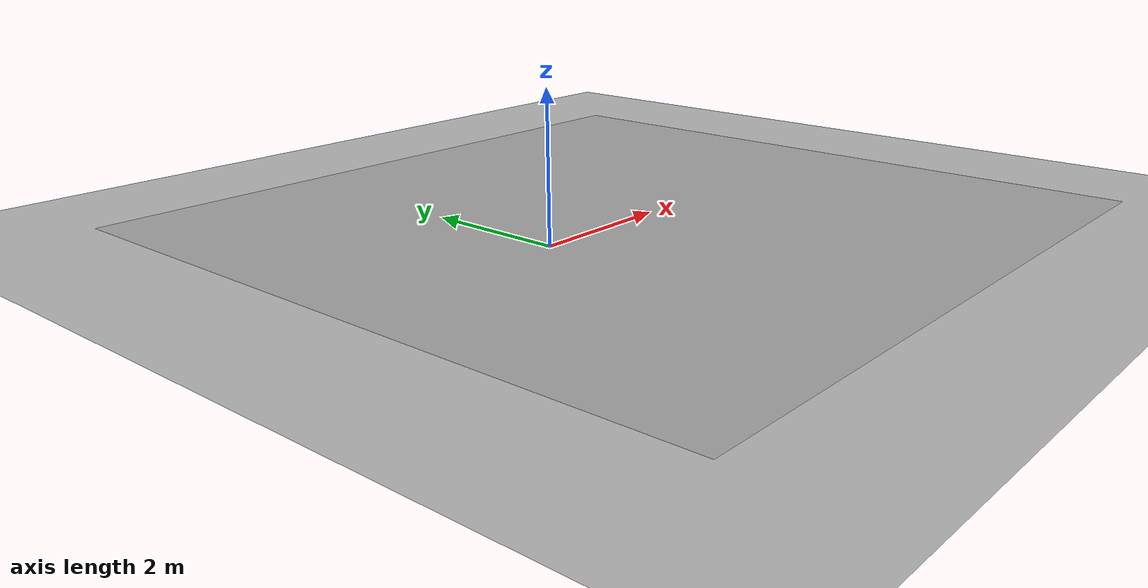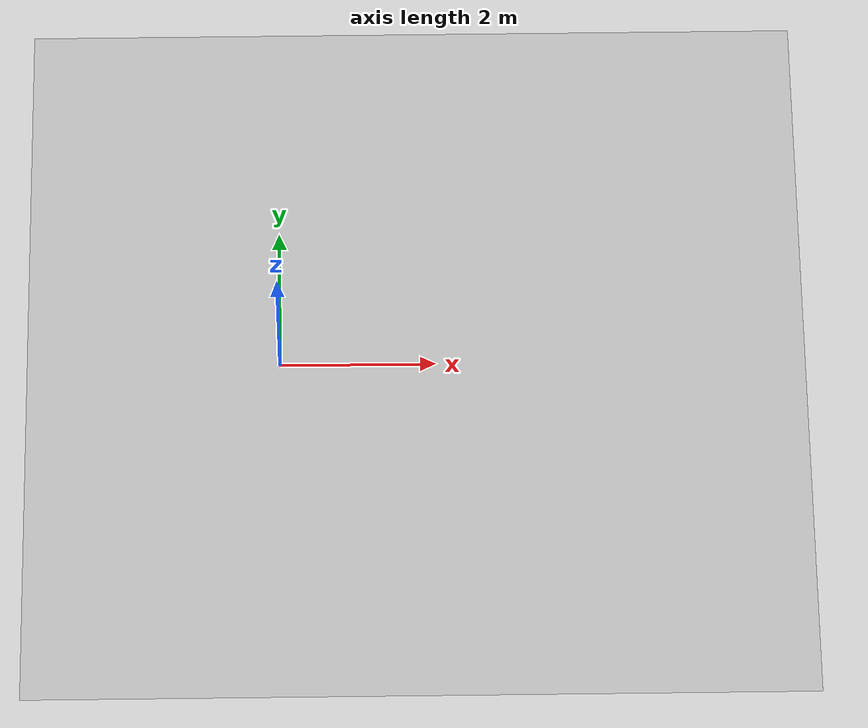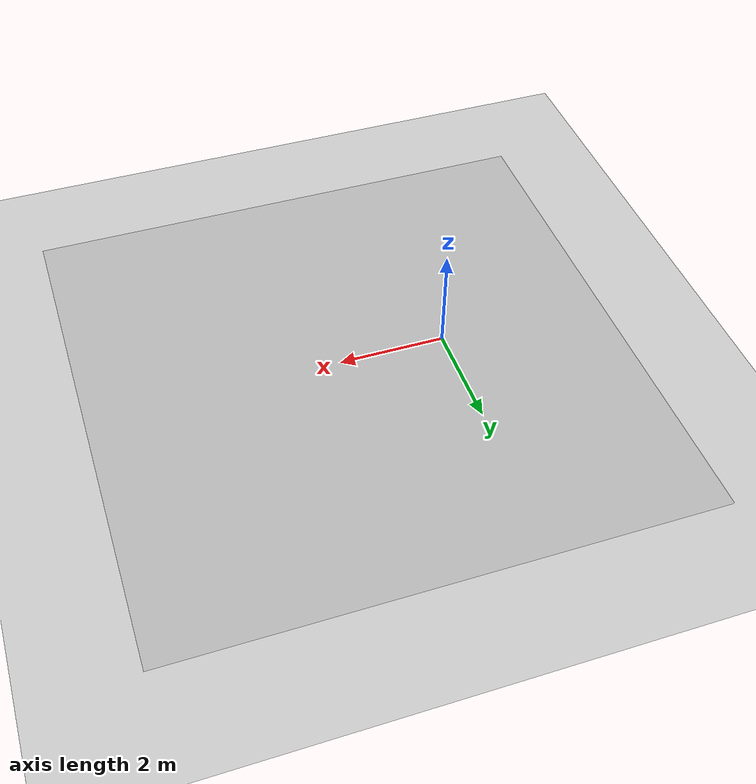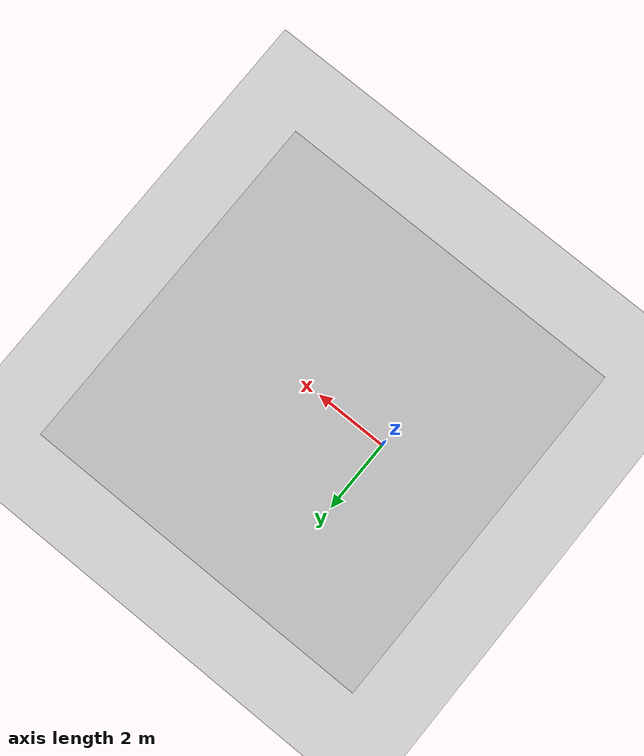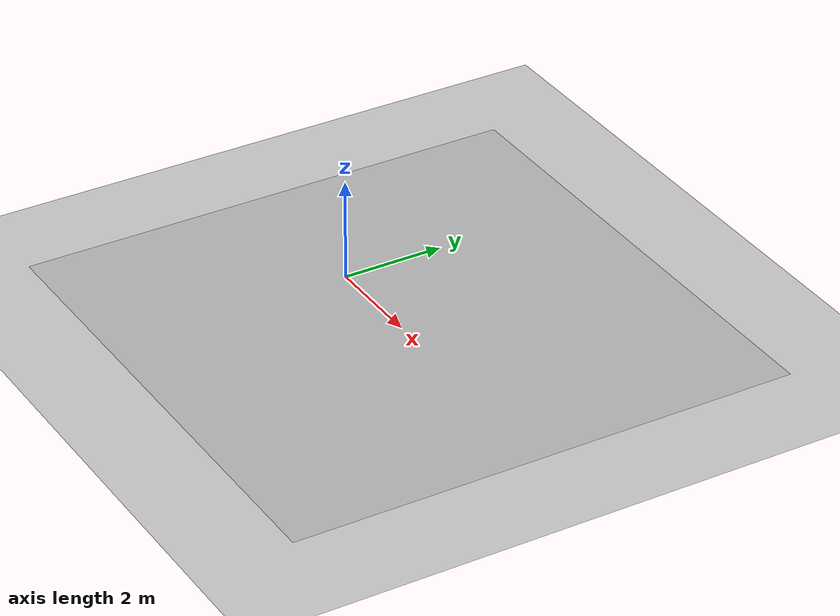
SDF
<?xml version="1.0" ?>
<sdf version="1.4">
  <!-- We use a custom world for the rrbot so that the camera angle is launched correctly -->

  <world name="kidsize_world">

    <physics type="ode">
      <real_time_update_rate>2000</real_time_update_rate>
      <max_step_size>0.0005</max_step_size>
    </physics>

    <include>
      <uri>model://ground_plane</uri>
    </include>

    <include>
      <uri>model://FIRA_Ground</uri>
      <pose>1.75 0.15 0.001 0.0 0.0 1.5708</pose>
    </include>

    <!-- Global light source -->
    <include>
      <uri>model://sun</uri>
    </include>

    <!--plugin name="gazebo_ros_control" filename="libgazebo_ros_control.so"/-->
    <!--plugin name="kidsize" filename="libkidsize.so"/-->
  </world>
</sdf>

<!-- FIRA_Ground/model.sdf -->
<sdf version="1.4">
  <model name="FIRA_Ground">
    <pose>0 0 0.0001  0 0 0</pose>
     <static>true</static>
    <link name="link">
      <collision name="collision">
        <geometry>
          <mesh>
            <uri>model://FIRA_Ground/field_0407.DAE</uri>
          </mesh>
        </geometry>
      </collision>
      <visual name="visual">
        <geometry>
          <mesh>
            <uri>model://FIRA_Ground/field_0407.DAE</uri>
          </mesh>
        </geometry>
      </visual>
    </link>
  </model>
</sdf>
